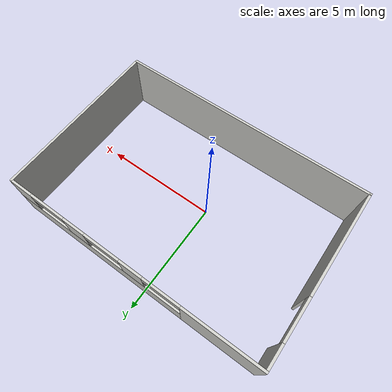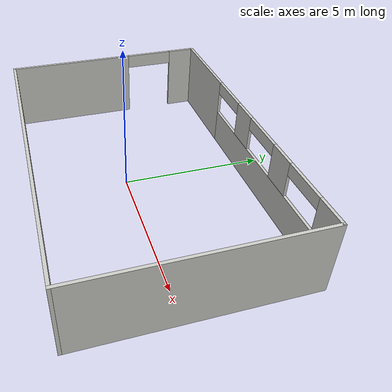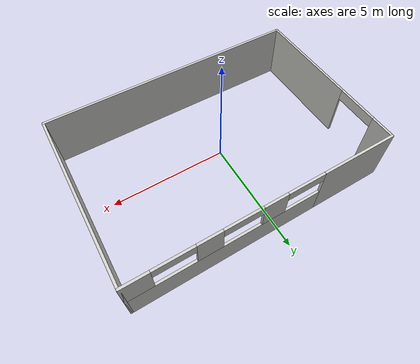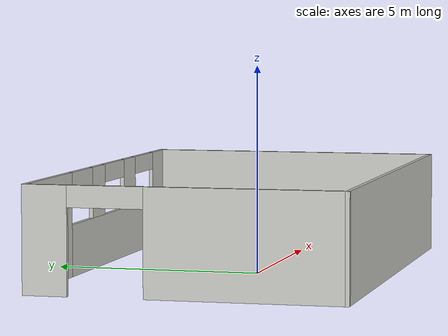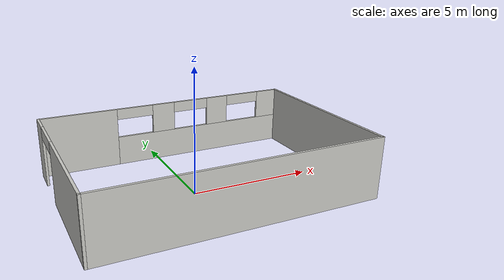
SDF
<?xml version='1.0'?>
<sdf version='1.6'>
  <model name='lab'>
    <pose frame=''>0.534 0.472 0 0 -0 0</pose>
    <link name='Wall_23'>
      <pose frame=''>0 3.675 0 0 -0 0</pose>
      <visual name='Wall_23_Visual_0'>
        <pose frame=''>-3.95366 0 1.25 0 -0 0</pose>
        <geometry>
          <box>
            <size>3.29217 0.1 2.5</size>
          </box>
        </geometry>
        <material>
          <script>
            <uri>file://media/materials/scripts/gazebo.material</uri>
            <name>Gazebo/CeilingTiled</name>
          </script>
          <ambient>0.760784 0.662745 0.627451 1</ambient>
        </material>
        <meta>
          <layer>0</layer>
        </meta>
      </visual>
      <collision name='Wall_23_Collision_0'>
        <geometry>
          <box>
            <size>3.29217 0.1 2.5</size>
          </box>
        </geometry>
        <pose frame=''>-3.95366 0 1.25 0 -0 0</pose>
      </collision>
      <visual name='Wall_23_Visual_1'>
        <pose frame=''>1.64609 0 0.625 0 -0 0</pose>
        <geometry>
          <box>
            <size>7.90733 0.1 1.25</size>
          </box>
        </geometry>
        <material>
          <script>
            <uri>file://media/materials/scripts/gazebo.material</uri>
            <name>Gazebo/CeilingTiled</name>
          </script>
          <ambient>0.760784 0.662745 0.627451 1</ambient>
        </material>
        <meta>
          <layer>0</layer>
        </meta>
      </visual>
      <collision name='Wall_23_Collision_1'>
        <geometry>
          <box>
            <size>7.90733 0.1 1.25</size>
          </box>
        </geometry>
        <pose frame=''>1.64609 0 0.625 0 -0 0</pose>
      </collision>
      <visual name='Wall_23_Visual_2'>
        <pose frame=''>-0.203222 0 1.875 0 -0 0</pose>
        <geometry>
          <box>
            <size>1.00872 0.1 1.25</size>
          </box>
        </geometry>
        <material>
          <script>
            <uri>file://media/materials/scripts/gazebo.material</uri>
            <name>Gazebo/CeilingTiled</name>
          </script>
          <ambient>0.760784 0.662745 0.627451 1</ambient>
        </material>
        <meta>
          <layer>0</layer>
        </meta>
      </visual>
      <collision name='Wall_23_Collision_2'>
        <geometry>
          <box>
            <size>1.00872 0.1 1.25</size>
          </box>
        </geometry>
        <pose frame=''>-0.203222 0 1.875 0 -0 0</pose>
      </collision>
      <visual name='Wall_23_Visual_3'>
        <pose frame=''>2.40557 0 1.875 0 -0 0</pose>
        <geometry>
          <box>
            <size>1.00886 0.1 1.25</size>
          </box>
        </geometry>
        <material>
          <script>
            <uri>file://media/materials/scripts/gazebo.material</uri>
            <name>Gazebo/CeilingTiled</name>
          </script>
          <ambient>0.760784 0.662745 0.627451 1</ambient>
        </material>
        <meta>
          <layer>0</layer>
        </meta>
      </visual>
      <collision name='Wall_23_Collision_3'>
        <geometry>
          <box>
            <size>1.00886 0.1 1.25</size>
          </box>
        </geometry>
        <pose frame=''>2.40557 0 1.875 0 -0 0</pose>
      </collision>
      <visual name='Wall_23_Visual_4'>
        <pose frame=''>5.05488 0 1.875 0 -0 0</pose>
        <geometry>
          <box>
            <size>1.08975 0.1 1.25</size>
          </box>
        </geometry>
        <material>
          <script>
            <uri>file://media/materials/scripts/gazebo.material</uri>
            <name>Gazebo/CeilingTiled</name>
          </script>
          <ambient>0.760784 0.662745 0.627451 1</ambient>
        </material>
        <meta>
          <layer>0</layer>
        </meta>
      </visual>
      <collision name='Wall_23_Collision_4'>
        <geometry>
          <box>
            <size>1.08975 0.1 1.25</size>
          </box>
        </geometry>
        <pose frame=''>5.05488 0 1.875 0 -0 0</pose>
      </collision>
      <visual name='Wall_23_Visual_5'>
        <pose frame=''>-1.50758 0 2.275 0 -0 0</pose>
        <geometry>
          <box>
            <size>1.6 0.1 0.45</size>
          </box>
        </geometry>
        <material>
          <script>
            <uri>file://media/materials/scripts/gazebo.material</uri>
            <name>Gazebo/CeilingTiled</name>
          </script>
          <ambient>0.760784 0.662745 0.627451 1</ambient>
        </material>
        <meta>
          <layer>0</layer>
        </meta>
      </visual>
      <collision name='Wall_23_Collision_5'>
        <geometry>
          <box>
            <size>1.6 0.1 0.45</size>
          </box>
        </geometry>
        <pose frame=''>-1.50758 0 2.275 0 -0 0</pose>
      </collision>
      <visual name='Wall_23_Visual_6'>
        <pose frame=''>1.10114 0 2.275 0 -0 0</pose>
        <geometry>
          <box>
            <size>1.6 0.1 0.45</size>
          </box>
        </geometry>
        <material>
          <script>
            <uri>file://media/materials/scripts/gazebo.material</uri>
            <name>Gazebo/CeilingTiled</name>
          </script>
          <ambient>0.760784 0.662745 0.627451 1</ambient>
        </material>
        <meta>
          <layer>0</layer>
        </meta>
      </visual>
      <collision name='Wall_23_Collision_6'>
        <geometry>
          <box>
            <size>1.6 0.1 0.45</size>
          </box>
        </geometry>
        <pose frame=''>1.10114 0 2.275 0 -0 0</pose>
      </collision>
      <visual name='Wall_23_Visual_7'>
        <pose frame=''>3.71 0 2.275 0 -0 0</pose>
        <geometry>
          <box>
            <size>1.6 0.1 0.45</size>
          </box>
        </geometry>
        <material>
          <script>
            <uri>file://media/materials/scripts/gazebo.material</uri>
            <name>Gazebo/CeilingTiled</name>
          </script>
          <ambient>0.760784 0.662745 0.627451 1</ambient>
        </material>
        <meta>
          <layer>0</layer>
        </meta>
      </visual>
      <collision name='Wall_23_Collision_7'>
        <geometry>
          <box>
            <size>1.6 0.1 0.45</size>
          </box>
        </geometry>
        <pose frame=''>3.71 0 2.275 0 -0 0</pose>
      </collision>
    </link>
    <link name='Wall_24'>
      <collision name='Wall_24_Collision'>
        <geometry>
          <box>
            <size>7.45 0.1 2.5</size>
          </box>
        </geometry>
        <pose frame=''>0 0 1.25 0 -0 0</pose>
      </collision>
      <visual name='Wall_24_Visual'>
        <pose frame=''>0 0 1.25 0 -0 0</pose>
        <geometry>
          <box>
            <size>7.45 0.1 2.5</size>
          </box>
        </geometry>
        <material>
          <script>
            <uri>file://media/materials/scripts/gazebo.material</uri>
            <name>Gazebo/CeilingTiled</name>
          </script>
          <ambient>0.760784 0.662745 0.627451 1</ambient>
        </material>
        <meta>
          <layer>0</layer>
        </meta>
      </visual>
      <pose frame=''>5.55 -0 0 0 -0 -1.5708</pose>
    </link>
    <link name='Wall_25'>
      <collision name='Wall_25_Collision'>
        <geometry>
          <box>
            <size>11.2005 0.1 2.5</size>
          </box>
        </geometry>
        <pose frame=''>0 0 1.25 0 -0 0</pose>
      </collision>
      <visual name='Wall_25_Visual'>
        <pose frame=''>0 0 1.25 0 -0 0</pose>
        <geometry>
          <box>
            <size>11.2005 0.1 2.5</size>
          </box>
        </geometry>
        <material>
          <script>
            <uri>file://media/materials/scripts/gazebo.material</uri>
            <name>Gazebo/CeilingTiled</name>
          </script>
          <ambient>0.760784 0.662745 0.627451 1</ambient>
        </material>
        <meta>
          <layer>0</layer>
        </meta>
      </visual>
      <pose frame=''>0 -3.675 0 0 -0 3.14159</pose>
    </link>
    <link name='Wall_26'>
      <pose frame=''>-5.55 -0 0 0 -0 1.5708</pose>
      <visual name='Wall_26_Visual_0'>
        <pose frame=''>-1.40863 0 1.25 0 -0 0</pose>
        <geometry>
          <box>
            <size>4.63275 0.1 2.5</size>
          </box>
        </geometry>
        <material>
          <script>
            <uri>file://media/materials/scripts/gazebo.material</uri>
            <name>Gazebo/CeilingTiled</name>
          </script>
          <ambient>0.760784 0.662745 0.627451 1</ambient>
        </material>
        <meta>
          <layer>0</layer>
        </meta>
      </visual>
      <collision name='Wall_26_Collision_0'>
        <geometry>
          <box>
            <size>4.63275 0.1 2.5</size>
          </box>
        </geometry>
        <pose frame=''>-1.40863 0 1.25 0 -0 0</pose>
      </collision>
      <visual name='Wall_26_Visual_1'>
        <pose frame=''>3.19762 0 1.25 0 -0 0</pose>
        <geometry>
          <box>
            <size>1.05475 0.1 2.5</size>
          </box>
        </geometry>
        <material>
          <script>
            <uri>file://media/materials/scripts/gazebo.material</uri>
            <name>Gazebo/CeilingTiled</name>
          </script>
          <ambient>0.760784 0.662745 0.627451 1</ambient>
        </material>
        <meta>
          <layer>0</layer>
        </meta>
      </visual>
      <collision name='Wall_26_Collision_1'>
        <geometry>
          <box>
            <size>1.05475 0.1 2.5</size>
          </box>
        </geometry>
        <pose frame=''>3.19762 0 1.25 0 -0 0</pose>
      </collision>
      <visual name='Wall_26_Visual_2'>
        <pose frame=''>1.789 0 2.25 0 -0 0</pose>
        <geometry>
          <box>
            <size>1.7625 0.1 0.5</size>
          </box>
        </geometry>
        <material>
          <script>
            <uri>file://media/materials/scripts/gazebo.material</uri>
            <name>Gazebo/CeilingTiled</name>
          </script>
          <ambient>0.760784 0.662745 0.627451 1</ambient>
        </material>
        <meta>
          <layer>0</layer>
        </meta>
      </visual>
      <collision name='Wall_26_Collision_2'>
        <geometry>
          <box>
            <size>1.7625 0.1 0.5</size>
          </box>
        </geometry>
        <pose frame=''>1.789 0 2.25 0 -0 0</pose>
      </collision>
    </link>
    <static>1</static>
  </model>
</sdf>
